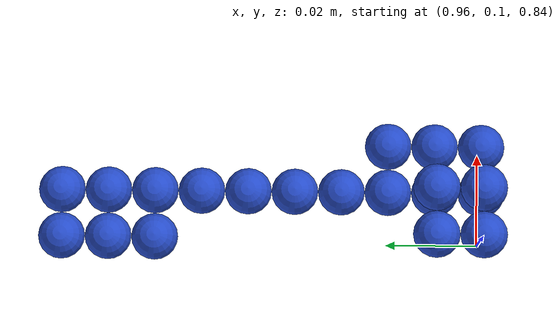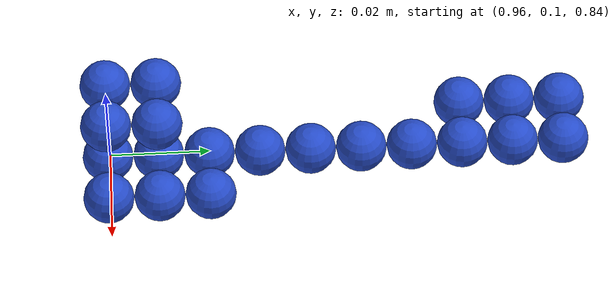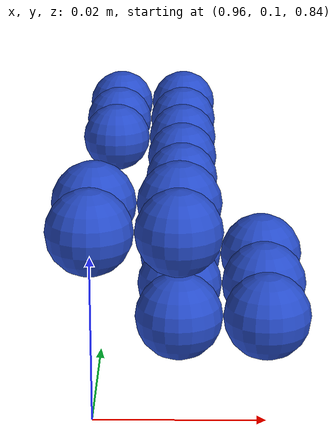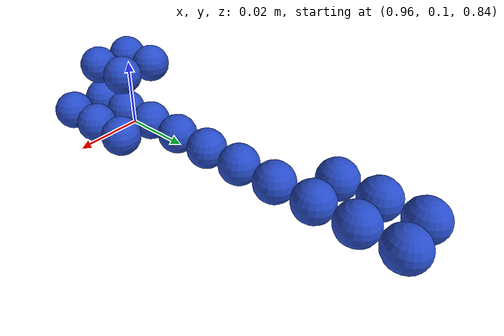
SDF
<sdf version="1.4">
 <world name="default">
  <include><uri>model://ground_plane</uri></include>
  <include><uri>model://sun</uri></include>
  <model name="ball_bearing_2">
   <link name="link">
    <pose>0 0 0.003 0 0 0</pose>
    <inertial>
     <mass>0.0011</mass>
     <inertia>
      <ixx>3.96e-09</ixx>
      <ixy>0</ixy>
      <ixz>0</ixz>
      <iyy>3.96e-09</iyy>
      <iyz>0</iyz>
      <izz>3.96e-09</izz>
     </inertia>
    </inertial>
    <collision name="collision">
     <geometry><sphere><radius>0.005</radius></sphere></geometry>
     <surface><contact><ode><max_vel>0.1</max_vel><min_depth>0.0001</min_depth></ode></contact></surface>
    </collision>
    <visual name="visual">
     <geometry><sphere><radius>0.005</radius></sphere></geometry>
     <material>
      <script><uri>file://media/materials/scripts/gazebo.material</uri><name>Gazebo/Blue</name></script>
     </material>
    </visual>
    <velocity_decay><linear>0</linear><angular>0.005</angular></velocity_decay>
   </link>
   <pose>0.97 0.1 0.85 0.0 0.0 0.0</pose>
  </model>
  <model name="ball_bearing_3">
   <link name="link">
    <pose>0 0 0.003 0 0 0</pose>
    <inertial>
     <mass>0.0011</mass>
     <inertia>
      <ixx>3.96e-09</ixx>
      <ixy>0</ixy>
      <ixz>0</ixz>
      <iyy>3.96e-09</iyy>
      <iyz>0</iyz>
      <izz>3.96e-09</izz>
     </inertia>
    </inertial>
    <collision name="collision">
     <geometry><sphere><radius>0.005</radius></sphere></geometry>
     <surface><contact><ode><max_vel>0.1</max_vel><min_depth>0.0001</min_depth></ode></contact></surface>
    </collision>
    <visual name="visual">
     <geometry><sphere><radius>0.005</radius></sphere></geometry>
     <material>
      <script><uri>file://media/materials/scripts/gazebo.material</uri><name>Gazebo/Blue</name></script>
     </material>
    </visual>
    <velocity_decay><linear>0</linear><angular>0.005</angular></velocity_decay>
   </link>
   <pose>0.98 0.1 0.85 0.0 0.0 0.0</pose>
  </model>
  <model name="ball_bearing_12">
   <link name="link">
    <pose>0 0 0.003 0 0 0</pose>
    <inertial>
     <mass>0.0011</mass>
     <inertia>
      <ixx>3.96e-09</ixx>
      <ixy>0</ixy>
      <ixz>0</ixz>
      <iyy>3.96e-09</iyy>
      <iyz>0</iyz>
      <izz>3.96e-09</izz>
     </inertia>
    </inertial>
    <collision name="collision">
     <geometry><sphere><radius>0.005</radius></sphere></geometry>
     <surface><contact><ode><max_vel>0.1</max_vel><min_depth>0.0001</min_depth></ode></contact></surface>
    </collision>
    <visual name="visual">
     <geometry><sphere><radius>0.005</radius></sphere></geometry>
     <material>
      <script><uri>file://media/materials/scripts/gazebo.material</uri><name>Gazebo/Blue</name></script>
     </material>
    </visual>
    <velocity_decay><linear>0</linear><angular>0.005</angular></velocity_decay>
   </link>
   <pose>0.97 0.11 0.85 0.0 0.0 0.0</pose>
  </model>
  <model name="ball_bearing_13">
   <link name="link">
    <pose>0 0 0.003 0 0 0</pose>
    <inertial>
     <mass>0.0011</mass>
     <inertia>
      <ixx>3.96e-09</ixx>
      <ixy>0</ixy>
      <ixz>0</ixz>
      <iyy>3.96e-09</iyy>
      <iyz>0</iyz>
      <izz>3.96e-09</izz>
     </inertia>
    </inertial>
    <collision name="collision">
     <geometry><sphere><radius>0.005</radius></sphere></geometry>
     <surface><contact><ode><max_vel>0.1</max_vel><min_depth>0.0001</min_depth></ode></contact></surface>
    </collision>
    <visual name="visual">
     <geometry><sphere><radius>0.005</radius></sphere></geometry>
     <material>
      <script><uri>file://media/materials/scripts/gazebo.material</uri><name>Gazebo/Blue</name></script>
     </material>
    </visual>
    <velocity_decay><linear>0</linear><angular>0.005</angular></velocity_decay>
   </link>
   <pose>0.98 0.11 0.85 0.0 0.0 0.0</pose>
  </model>
  <model name="ball_bearing_22">
   <link name="link">
    <pose>0 0 0.003 0 0 0</pose>
    <inertial>
     <mass>0.0011</mass>
     <inertia>
      <ixx>3.96e-09</ixx>
      <ixy>0</ixy>
      <ixz>0</ixz>
      <iyy>3.96e-09</iyy>
      <iyz>0</iyz>
      <izz>3.96e-09</izz>
     </inertia>
    </inertial>
    <collision name="collision">
     <geometry><sphere><radius>0.005</radius></sphere></geometry>
     <surface><contact><ode><max_vel>0.1</max_vel><min_depth>0.0001</min_depth></ode></contact></surface>
    </collision>
    <visual name="visual">
     <geometry><sphere><radius>0.005</radius></sphere></geometry>
     <material>
      <script><uri>file://media/materials/scripts/gazebo.material</uri><name>Gazebo/Blue</name></script>
     </material>
    </visual>
    <velocity_decay><linear>0</linear><angular>0.005</angular></velocity_decay>
   </link>
   <pose>0.97 0.12 0.85 0.0 0.0 0.0</pose>
  </model>
  <model name="ball_bearing_23">
   <link name="link">
    <pose>0 0 0.003 0 0 0</pose>
    <inertial>
     <mass>0.0011</mass>
     <inertia>
      <ixx>3.96e-09</ixx>
      <ixy>0</ixy>
      <ixz>0</ixz>
      <iyy>3.96e-09</iyy>
      <iyz>0</iyz>
      <izz>3.96e-09</izz>
     </inertia>
    </inertial>
    <collision name="collision">
     <geometry><sphere><radius>0.005</radius></sphere></geometry>
     <surface><contact><ode><max_vel>0.1</max_vel><min_depth>0.0001</min_depth></ode></contact></surface>
    </collision>
    <visual name="visual">
     <geometry><sphere><radius>0.005</radius></sphere></geometry>
     <material>
      <script><uri>file://media/materials/scripts/gazebo.material</uri><name>Gazebo/Blue</name></script>
     </material>
    </visual>
    <velocity_decay><linear>0</linear><angular>0.005</angular></velocity_decay>
   </link>
   <pose>0.98 0.12 0.85 0.0 0.0 0.0</pose>
  </model>
  <model name="ball_bearing_32">
   <link name="link">
    <pose>0 0 0.003 0 0 0</pose>
    <inertial>
     <mass>0.0011</mass>
     <inertia>
      <ixx>3.96e-09</ixx>
      <ixy>0</ixy>
      <ixz>0</ixz>
      <iyy>3.96e-09</iyy>
      <iyz>0</iyz>
      <izz>3.96e-09</izz>
     </inertia>
    </inertial>
    <collision name="collision">
     <geometry><sphere><radius>0.005</radius></sphere></geometry>
     <surface><contact><ode><max_vel>0.1</max_vel><min_depth>0.0001</min_depth></ode></contact></surface>
    </collision>
    <visual name="visual">
     <geometry><sphere><radius>0.005</radius></sphere></geometry>
     <material>
      <script><uri>file://media/materials/scripts/gazebo.material</uri><name>Gazebo/Blue</name></script>
     </material>
    </visual>
    <velocity_decay><linear>0</linear><angular>0.005</angular></velocity_decay>
   </link>
   <pose>0.97 0.13 0.85 0.0 0.0 0.0</pose>
  </model>
  <model name="ball_bearing_42">
   <link name="link">
    <pose>0 0 0.003 0 0 0</pose>
    <inertial>
     <mass>0.0011</mass>
     <inertia>
      <ixx>3.96e-09</ixx>
      <ixy>0</ixy>
      <ixz>0</ixz>
      <iyy>3.96e-09</iyy>
      <iyz>0</iyz>
      <izz>3.96e-09</izz>
     </inertia>
    </inertial>
    <collision name="collision">
     <geometry><sphere><radius>0.005</radius></sphere></geometry>
     <surface><contact><ode><max_vel>0.1</max_vel><min_depth>0.0001</min_depth></ode></contact></surface>
    </collision>
    <visual name="visual">
     <geometry><sphere><radius>0.005</radius></sphere></geometry>
     <material>
      <script><uri>file://media/materials/scripts/gazebo.material</uri><name>Gazebo/Blue</name></script>
     </material>
    </visual>
    <velocity_decay><linear>0</linear><angular>0.005</angular></velocity_decay>
   </link>
   <pose>0.97 0.14 0.85 0.0 0.0 0.0</pose>
  </model>
  <model name="ball_bearing_52">
   <link name="link">
    <pose>0 0 0.003 0 0 0</pose>
    <inertial>
     <mass>0.0011</mass>
     <inertia>
      <ixx>3.96e-09</ixx>
      <ixy>0</ixy>
      <ixz>0</ixz>
      <iyy>3.96e-09</iyy>
      <iyz>0</iyz>
      <izz>3.96e-09</izz>
     </inertia>
    </inertial>
    <collision name="collision">
     <geometry><sphere><radius>0.005</radius></sphere></geometry>
     <surface><contact><ode><max_vel>0.1</max_vel><min_depth>0.0001</min_depth></ode></contact></surface>
    </collision>
    <visual name="visual">
     <geometry><sphere><radius>0.005</radius></sphere></geometry>
     <material>
      <script><uri>file://media/materials/scripts/gazebo.material</uri><name>Gazebo/Blue</name></script>
     </material>
    </visual>
    <velocity_decay><linear>0</linear><angular>0.005</angular></velocity_decay>
   </link>
   <pose>0.97 0.15 0.85 0.0 0.0 0.0</pose>
  </model>
  <model name="ball_bearing_62">
   <link name="link">
    <pose>0 0 0.003 0 0 0</pose>
    <inertial>
     <mass>0.0011</mass>
     <inertia>
      <ixx>3.96e-09</ixx>
      <ixy>0</ixy>
      <ixz>0</ixz>
      <iyy>3.96e-09</iyy>
      <iyz>0</iyz>
      <izz>3.96e-09</izz>
     </inertia>
    </inertial>
    <collision name="collision">
     <geometry><sphere><radius>0.005</radius></sphere></geometry>
     <surface><contact><ode><max_vel>0.1</max_vel><min_depth>0.0001</min_depth></ode></contact></surface>
    </collision>
    <visual name="visual">
     <geometry><sphere><radius>0.005</radius></sphere></geometry>
     <material>
      <script><uri>file://media/materials/scripts/gazebo.material</uri><name>Gazebo/Blue</name></script>
     </material>
    </visual>
    <velocity_decay><linear>0</linear><angular>0.005</angular></velocity_decay>
   </link>
   <pose>0.97 0.16 0.85 0.0 0.0 0.0</pose>
  </model>
  <model name="ball_bearing_71">
   <link name="link">
    <pose>0 0 0.003 0 0 0</pose>
    <inertial>
     <mass>0.0011</mass>
     <inertia>
      <ixx>3.96e-09</ixx>
      <ixy>0</ixy>
      <ixz>0</ixz>
      <iyy>3.96e-09</iyy>
      <iyz>0</iyz>
      <izz>3.96e-09</izz>
     </inertia>
    </inertial>
    <collision name="collision">
     <geometry><sphere><radius>0.005</radius></sphere></geometry>
     <surface><contact><ode><max_vel>0.1</max_vel><min_depth>0.0001</min_depth></ode></contact></surface>
    </collision>
    <visual name="visual">
     <geometry><sphere><radius>0.005</radius></sphere></geometry>
     <material>
      <script><uri>file://media/materials/scripts/gazebo.material</uri><name>Gazebo/Blue</name></script>
     </material>
    </visual>
    <velocity_decay><linear>0</linear><angular>0.005</angular></velocity_decay>
   </link>
   <pose>0.96 0.17 0.85 0.0 0.0 0.0</pose>
  </model>
  <model name="ball_bearing_72">
   <link name="link">
    <pose>0 0 0.003 0 0 0</pose>
    <inertial>
     <mass>0.0011</mass>
     <inertia>
      <ixx>3.96e-09</ixx>
      <ixy>0</ixy>
      <ixz>0</ixz>
      <iyy>3.96e-09</iyy>
      <iyz>0</iyz>
      <izz>3.96e-09</izz>
     </inertia>
    </inertial>
    <collision name="collision">
     <geometry><sphere><radius>0.005</radius></sphere></geometry>
     <surface><contact><ode><max_vel>0.1</max_vel><min_depth>0.0001</min_depth></ode></contact></surface>
    </collision>
    <visual name="visual">
     <geometry><sphere><radius>0.005</radius></sphere></geometry>
     <material>
      <script><uri>file://media/materials/scripts/gazebo.material</uri><name>Gazebo/Blue</name></script>
     </material>
    </visual>
    <velocity_decay><linear>0</linear><angular>0.005</angular></velocity_decay>
   </link>
   <pose>0.97 0.17 0.85 0.0 0.0 0.0</pose>
  </model>
  <model name="ball_bearing_81">
   <link name="link">
    <pose>0 0 0.003 0 0 0</pose>
    <inertial>
     <mass>0.0011</mass>
     <inertia>
      <ixx>3.96e-09</ixx>
      <ixy>0</ixy>
      <ixz>0</ixz>
      <iyy>3.96e-09</iyy>
      <iyz>0</iyz>
      <izz>3.96e-09</izz>
     </inertia>
    </inertial>
    <collision name="collision">
     <geometry><sphere><radius>0.005</radius></sphere></geometry>
     <surface><contact><ode><max_vel>0.1</max_vel><min_depth>0.0001</min_depth></ode></contact></surface>
    </collision>
    <visual name="visual">
     <geometry><sphere><radius>0.005</radius></sphere></geometry>
     <material>
      <script><uri>file://media/materials/scripts/gazebo.material</uri><name>Gazebo/Blue</name></script>
     </material>
    </visual>
    <velocity_decay><linear>0</linear><angular>0.005</angular></velocity_decay>
   </link>
   <pose>0.96 0.18 0.85 0.0 0.0 0.0</pose>
  </model>
  <model name="ball_bearing_82">
   <link name="link">
    <pose>0 0 0.003 0 0 0</pose>
    <inertial>
     <mass>0.0011</mass>
     <inertia>
      <ixx>3.96e-09</ixx>
      <ixy>0</ixy>
      <ixz>0</ixz>
      <iyy>3.96e-09</iyy>
      <iyz>0</iyz>
      <izz>3.96e-09</izz>
     </inertia>
    </inertial>
    <collision name="collision">
     <geometry><sphere><radius>0.005</radius></sphere></geometry>
     <surface><contact><ode><max_vel>0.1</max_vel><min_depth>0.0001</min_depth></ode></contact></surface>
    </collision>
    <visual name="visual">
     <geometry><sphere><radius>0.005</radius></sphere></geometry>
     <material>
      <script><uri>file://media/materials/scripts/gazebo.material</uri><name>Gazebo/Blue</name></script>
     </material>
    </visual>
    <velocity_decay><linear>0</linear><angular>0.005</angular></velocity_decay>
   </link>
   <pose>0.97 0.18 0.85 0.0 0.0 0.0</pose>
  </model>
  <model name="ball_bearing_91">
   <link name="link">
    <pose>0 0 0.003 0 0 0</pose>
    <inertial>
     <mass>0.0011</mass>
     <inertia>
      <ixx>3.96e-09</ixx>
      <ixy>0</ixy>
      <ixz>0</ixz>
      <iyy>3.96e-09</iyy>
      <iyz>0</iyz>
      <izz>3.96e-09</izz>
     </inertia>
    </inertial>
    <collision name="collision">
     <geometry><sphere><radius>0.005</radius></sphere></geometry>
     <surface><contact><ode><max_vel>0.1</max_vel><min_depth>0.0001</min_depth></ode></contact></surface>
    </collision>
    <visual name="visual">
     <geometry><sphere><radius>0.005</radius></sphere></geometry>
     <material>
      <script><uri>file://media/materials/scripts/gazebo.material</uri><name>Gazebo/Blue</name></script>
     </material>
    </visual>
    <velocity_decay><linear>0</linear><angular>0.005</angular></velocity_decay>
   </link>
   <pose>0.96 0.19 0.85 0.0 0.0 0.0</pose>
  </model>
  <model name="ball_bearing_92">
   <link name="link">
    <pose>0 0 0.003 0 0 0</pose>
    <inertial>
     <mass>0.0011</mass>
     <inertia>
      <ixx>3.96e-09</ixx>
      <ixy>0</ixy>
      <ixz>0</ixz>
      <iyy>3.96e-09</iyy>
      <iyz>0</iyz>
      <izz>3.96e-09</izz>
     </inertia>
    </inertial>
    <collision name="collision">
     <geometry><sphere><radius>0.005</radius></sphere></geometry>
     <surface><contact><ode><max_vel>0.1</max_vel><min_depth>0.0001</min_depth></ode></contact></surface>
    </collision>
    <visual name="visual">
     <geometry><sphere><radius>0.005</radius></sphere></geometry>
     <material>
      <script><uri>file://media/materials/scripts/gazebo.material</uri><name>Gazebo/Blue</name></script>
     </material>
    </visual>
    <velocity_decay><linear>0</linear><angular>0.005</angular></velocity_decay>
   </link>
   <pose>0.97 0.19 0.85 0.0 0.0 0.0</pose>
  </model>
  <model name="ball_bearing_101">
   <link name="link">
    <pose>0 0 0.003 0 0 0</pose>
    <inertial>
     <mass>0.0011</mass>
     <inertia>
      <ixx>3.96e-09</ixx>
      <ixy>0</ixy>
      <ixz>0</ixz>
      <iyy>3.96e-09</iyy>
      <iyz>0</iyz>
      <izz>3.96e-09</izz>
     </inertia>
    </inertial>
    <collision name="collision">
     <geometry><sphere><radius>0.005</radius></sphere></geometry>
     <surface><contact><ode><max_vel>0.1</max_vel><min_depth>0.0001</min_depth></ode></contact></surface>
    </collision>
    <visual name="visual">
     <geometry><sphere><radius>0.005</radius></sphere></geometry>
     <material>
      <script><uri>file://media/materials/scripts/gazebo.material</uri><name>Gazebo/Blue</name></script>
     </material>
    </visual>
    <velocity_decay><linear>0</linear><angular>0.005</angular></velocity_decay>
   </link>
   <pose>0.96 0.1 0.86 0.0 0.0 0.0</pose>
  </model>
  <model name="ball_bearing_102">
   <link name="link">
    <pose>0 0 0.003 0 0 0</pose>
    <inertial>
     <mass>0.0011</mass>
     <inertia>
      <ixx>3.96e-09</ixx>
      <ixy>0</ixy>
      <ixz>0</ixz>
      <iyy>3.96e-09</iyy>
      <iyz>0</iyz>
      <izz>3.96e-09</izz>
     </inertia>
    </inertial>
    <collision name="collision">
     <geometry><sphere><radius>0.005</radius></sphere></geometry>
     <surface><contact><ode><max_vel>0.1</max_vel><min_depth>0.0001</min_depth></ode></contact></surface>
    </collision>
    <visual name="visual">
     <geometry><sphere><radius>0.005</radius></sphere></geometry>
     <material>
      <script><uri>file://media/materials/scripts/gazebo.material</uri><name>Gazebo/Blue</name></script>
     </material>
    </visual>
    <velocity_decay><linear>0</linear><angular>0.005</angular></velocity_decay>
   </link>
   <pose>0.97 0.1 0.86 0.0 0.0 0.0</pose>
  </model>
  <model name="ball_bearing_111">
   <link name="link">
    <pose>0 0 0.003 0 0 0</pose>
    <inertial>
     <mass>0.0011</mass>
     <inertia>
      <ixx>3.96e-09</ixx>
      <ixy>0</ixy>
      <ixz>0</ixz>
      <iyy>3.96e-09</iyy>
      <iyz>0</iyz>
      <izz>3.96e-09</izz>
     </inertia>
    </inertial>
    <collision name="collision">
     <geometry><sphere><radius>0.005</radius></sphere></geometry>
     <surface><contact><ode><max_vel>0.1</max_vel><min_depth>0.0001</min_depth></ode></contact></surface>
    </collision>
    <visual name="visual">
     <geometry><sphere><radius>0.005</radius></sphere></geometry>
     <material>
      <script><uri>file://media/materials/scripts/gazebo.material</uri><name>Gazebo/Blue</name></script>
     </material>
    </visual>
    <velocity_decay><linear>0</linear><angular>0.005</angular></velocity_decay>
   </link>
   <pose>0.96 0.11 0.86 0.0 0.0 0.0</pose>
  </model>
  <model name="ball_bearing_112">
   <link name="link">
    <pose>0 0 0.003 0 0 0</pose>
    <inertial>
     <mass>0.0011</mass>
     <inertia>
      <ixx>3.96e-09</ixx>
      <ixy>0</ixy>
      <ixz>0</ixz>
      <iyy>3.96e-09</iyy>
      <iyz>0</iyz>
      <izz>3.96e-09</izz>
     </inertia>
    </inertial>
    <collision name="collision">
     <geometry><sphere><radius>0.005</radius></sphere></geometry>
     <surface><contact><ode><max_vel>0.1</max_vel><min_depth>0.0001</min_depth></ode></contact></surface>
    </collision>
    <visual name="visual">
     <geometry><sphere><radius>0.005</radius></sphere></geometry>
     <material>
      <script><uri>file://media/materials/scripts/gazebo.material</uri><name>Gazebo/Blue</name></script>
     </material>
    </visual>
    <velocity_decay><linear>0</linear><angular>0.005</angular></velocity_decay>
   </link>
   <pose>0.97 0.11 0.86 0.0 0.0 0.0</pose>
  </model>
 </world>
</sdf>
